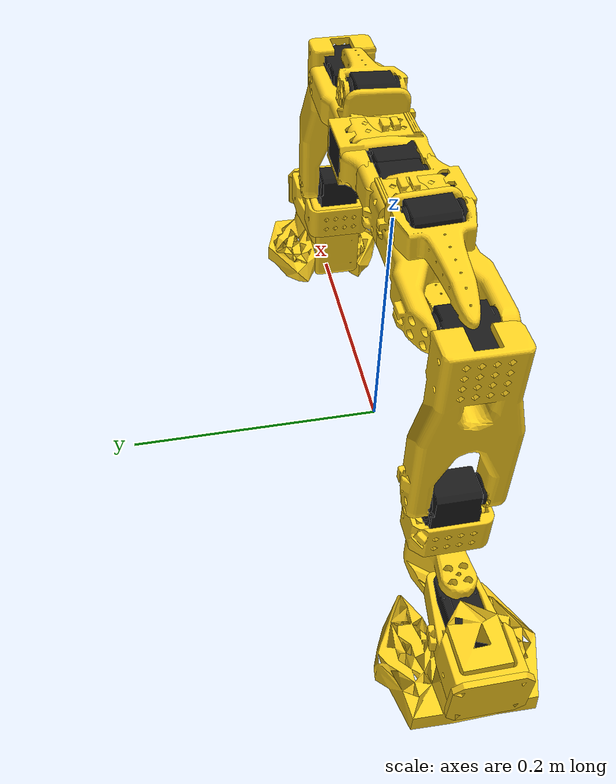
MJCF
<mujoco model="thali_arms_only">
  <compiler angle="radian" meshdir="so101/assets/"/>

  <default>
    <default class="arm_a_main">
      <default class="arm_a_so101_new_calib">
        <joint armature="0.005" damping="1" frictionloss="0.1"/>
        <general biastype="affine" gainprm="50" biasprm="0 -50"/>
        <default class="arm_a_visual">
          <geom type="mesh" contype="0" conaffinity="0" group="2"/>
        </default>
        <default class="arm_a_collision">
          <geom group="3"/>
        </default>
      </default>
      <default class="arm_a_sts3215">
        <joint armature="0.028" damping="0.6" frictionloss="0.052"/>
        <geom contype="0" conaffinity="0"/>
        <general forcerange="-2.94 2.94" biastype="affine" gainprm="998.22" biasprm="0 -998.22 -2.731"/>
      </default>
      <default class="arm_a_backlash">
        <joint range="-0.00872665 0.00872665" armature="0.01" damping="0.01" limited="true"/>
      </default>
    </default>
    <default class="arm_b_main">
      <default class="arm_b_so101_new_calib">
        <joint armature="0.005" damping="1" frictionloss="0.1"/>
        <general biastype="affine" gainprm="50" biasprm="0 -50"/>
        <default class="arm_b_visual">
          <geom type="mesh" contype="0" conaffinity="0" group="2"/>
        </default>
        <default class="arm_b_collision">
          <geom group="3"/>
        </default>
      </default>
      <default class="arm_b_sts3215">
        <joint armature="0.028" damping="0.6" frictionloss="0.052"/>
        <geom contype="0" conaffinity="0"/>
        <general forcerange="-2.94 2.94" biastype="affine" gainprm="998.22" biasprm="0 -998.22 -2.731"/>
      </default>
      <default class="arm_b_backlash">
        <joint range="-0.00872665 0.00872665" armature="0.01" damping="0.01" limited="true"/>
      </default>
    </default>
  </default>

  <asset>
    <material name="arm_a_base_motor_holder_so101_v1_material" rgba="1 0.82 0.12 1"/>
    <material name="arm_a_base_so101_v2_material" rgba="1 0.82 0.12 1"/>
    <material name="arm_a_sts3215_03a_v1_material" rgba="0.1 0.1 0.1 1"/>
    <material name="arm_a_waveshare_mounting_plate_so101_v2_material" rgba="1 0.82 0.12 1"/>
    <material name="arm_a_motor_holder_so101_base_v1_material" rgba="1 0.82 0.12 1"/>
    <material name="arm_a_rotation_pitch_so101_v1_material" rgba="1 0.82 0.12 1"/>
    <material name="arm_a_upper_arm_so101_v1_material" rgba="1 0.82 0.12 1"/>
    <material name="arm_a_under_arm_so101_v1_material" rgba="1 0.82 0.12 1"/>
    <material name="arm_a_motor_holder_so101_wrist_v1_material" rgba="1 0.82 0.12 1"/>
    <material name="arm_a_sts3215_03a_no_horn_v1_material" rgba="0.1 0.1 0.1 1"/>
    <material name="arm_a_wrist_roll_pitch_so101_v2_material" rgba="1 0.82 0.12 1"/>
    <material name="arm_a_wrist_roll_follower_so101_v1_material" rgba="1 0.82 0.12 1"/>
    <material name="arm_a_moving_jaw_so101_v1_material" rgba="1 0.82 0.12 1"/>
    <material name="arm_b_base_motor_holder_so101_v1_material" rgba="1 0.82 0.12 1"/>
    <material name="arm_b_base_so101_v2_material" rgba="1 0.82 0.12 1"/>
    <material name="arm_b_sts3215_03a_v1_material" rgba="0.1 0.1 0.1 1"/>
    <material name="arm_b_waveshare_mounting_plate_so101_v2_material" rgba="1 0.82 0.12 1"/>
    <material name="arm_b_motor_holder_so101_base_v1_material" rgba="1 0.82 0.12 1"/>
    <material name="arm_b_rotation_pitch_so101_v1_material" rgba="1 0.82 0.12 1"/>
    <material name="arm_b_upper_arm_so101_v1_material" rgba="1 0.82 0.12 1"/>
    <material name="arm_b_under_arm_so101_v1_material" rgba="1 0.82 0.12 1"/>
    <material name="arm_b_motor_holder_so101_wrist_v1_material" rgba="1 0.82 0.12 1"/>
    <material name="arm_b_sts3215_03a_no_horn_v1_material" rgba="0.1 0.1 0.1 1"/>
    <material name="arm_b_wrist_roll_pitch_so101_v2_material" rgba="1 0.82 0.12 1"/>
    <material name="arm_b_wrist_roll_follower_so101_v1_material" rgba="1 0.82 0.12 1"/>
    <material name="arm_b_moving_jaw_so101_v1_material" rgba="1 0.82 0.12 1"/>
    <mesh name="arm_a_waveshare_mounting_plate_so101_v2" file="waveshare_mounting_plate_so101_v2.stl"/>
    <mesh name="arm_a_sts3215_03a_v1" file="sts3215_03a_v1.stl"/>
    <mesh name="arm_a_motor_holder_so101_base_v1" file="motor_holder_so101_base_v1.stl"/>
    <mesh name="arm_a_wrist_roll_follower_so101_v1" file="wrist_roll_follower_so101_v1.stl"/>
    <mesh name="arm_a_moving_jaw_so101_v1" file="moving_jaw_so101_v1.stl"/>
    <mesh name="arm_a_base_motor_holder_so101_v1" file="base_motor_holder_so101_v1.stl"/>
    <mesh name="arm_a_upper_arm_so101_v1" file="upper_arm_so101_v1.stl"/>
    <mesh name="arm_a_wrist_roll_pitch_so101_v2" file="wrist_roll_pitch_so101_v2.stl"/>
    <mesh name="arm_a_under_arm_so101_v1" file="under_arm_so101_v1.stl"/>
    <mesh name="arm_a_rotation_pitch_so101_v1" file="rotation_pitch_so101_v1.stl"/>
    <mesh name="arm_a_motor_holder_so101_wrist_v1" file="motor_holder_so101_wrist_v1.stl"/>
    <mesh name="arm_a_sts3215_03a_no_horn_v1" file="sts3215_03a_no_horn_v1.stl"/>
    <mesh name="arm_a_base_so101_v2" file="base_so101_v2.stl"/>
    <mesh name="arm_b_waveshare_mounting_plate_so101_v2" file="waveshare_mounting_plate_so101_v2.stl"/>
    <mesh name="arm_b_sts3215_03a_v1" file="sts3215_03a_v1.stl"/>
    <mesh name="arm_b_motor_holder_so101_base_v1" file="motor_holder_so101_base_v1.stl"/>
    <mesh name="arm_b_wrist_roll_follower_so101_v1" file="wrist_roll_follower_so101_v1.stl"/>
    <mesh name="arm_b_moving_jaw_so101_v1" file="moving_jaw_so101_v1.stl"/>
    <mesh name="arm_b_base_motor_holder_so101_v1" file="base_motor_holder_so101_v1.stl"/>
    <mesh name="arm_b_upper_arm_so101_v1" file="upper_arm_so101_v1.stl"/>
    <mesh name="arm_b_wrist_roll_pitch_so101_v2" file="wrist_roll_pitch_so101_v2.stl"/>
    <mesh name="arm_b_under_arm_so101_v1" file="under_arm_so101_v1.stl"/>
    <mesh name="arm_b_rotation_pitch_so101_v1" file="rotation_pitch_so101_v1.stl"/>
    <mesh name="arm_b_motor_holder_so101_wrist_v1" file="motor_holder_so101_wrist_v1.stl"/>
    <mesh name="arm_b_sts3215_03a_no_horn_v1" file="sts3215_03a_no_horn_v1.stl"/>
    <mesh name="arm_b_base_so101_v2" file="base_so101_v2.stl"/>
  </asset>

  <worldbody>
    <body name="arm_a_base" childclass="arm_a_so101_new_calib" pos="-0.24 0 0">
      <inertial pos="0.0137179 -5.19711e-05 0.0334843" quat="0.420519 0.558762 0.57198 0.428704" mass="0.147" diaginertia="0.000136127 0.000131807 0.000113233"/>
      <geom class="arm_a_visual" pos="-0.00636471 -9.94414e-05 -0.0024" quat="0.5 0.5 0.5 0.5" material="arm_a_base_motor_holder_so101_v1_material" mesh="arm_a_base_motor_holder_so101_v1"/>
      <geom class="arm_a_visual" pos="-0.00636471 -8.97657e-09 -0.0024" quat="0.5 0.5 0.5 0.5" material="arm_a_base_so101_v2_material" mesh="arm_a_base_so101_v2"/>
      <geom class="arm_a_visual" pos="0.0263353 -8.97657e-09 0.0437" quat="1 0 0 0" material="arm_a_sts3215_03a_v1_material" mesh="arm_a_sts3215_03a_v1"/>
      <geom class="arm_a_visual" pos="-0.0309827 -0.000199441 0.0474" quat="0.5 0.5 0.5 0.5" material="arm_a_waveshare_mounting_plate_so101_v2_material" mesh="arm_a_waveshare_mounting_plate_so101_v2"/>
      <site name="arm_a_baseframe" quat="1 0 0 0" group="3"/>
      <body name="arm_a_shoulder" pos="0.0388353 -8.97657e-09 0.0624" quat="0 0 -1 0">
        <inertial pos="-0.0307604 -1.66727e-05 -0.0252713" quat="0.999865 0.00149563 0.0097084 0.0132043" mass="0.100006" diaginertia="8.37836e-05 8.10388e-05 2.39552e-05"/>
        <joint name="arm_a_shoulder_pan" class="arm_a_sts3215" range="-1.91986 1.91986"/>
        <geom class="arm_a_visual" pos="-0.0303992 0.000422241 -0.0417" quat="0.5 0.5 0.5 -0.5" material="arm_a_sts3215_03a_v1_material" mesh="arm_a_sts3215_03a_v1"/>
        <geom class="arm_a_collision" pos="-0.0303992 0.000422241 -0.0417" quat="0.5 0.5 0.5 -0.5" type="mesh" material="arm_a_sts3215_03a_v1_material" mesh="arm_a_sts3215_03a_v1"/>
        <geom class="arm_a_visual" pos="-0.0675992 -0.000177759 0.0158499" quat="0.5 0.5 -0.5 0.5" material="arm_a_motor_holder_so101_base_v1_material" mesh="arm_a_motor_holder_so101_base_v1"/>
        <geom class="arm_a_collision" pos="-0.0675992 -0.000177759 0.0158499" quat="0.5 0.5 -0.5 0.5" type="mesh" material="arm_a_motor_holder_so101_base_v1_material" mesh="arm_a_motor_holder_so101_base_v1"/>
        <geom class="arm_a_visual" pos="0.0122008 2.22413e-05 0.0464" quat="0.707107 -0.707107 0 0" material="arm_a_rotation_pitch_so101_v1_material" mesh="arm_a_rotation_pitch_so101_v1"/>
        <geom class="arm_a_collision" pos="0.0122008 2.22413e-05 0.0464" quat="0.707107 -0.707107 0 0" type="mesh" material="arm_a_rotation_pitch_so101_v1_material" mesh="arm_a_rotation_pitch_so101_v1"/>
        <body name="arm_a_upper_arm" pos="-0.0303992 -0.0182778 -0.0542" quat="0.5 -0.5 -0.5 -0.5">
          <inertial pos="-0.0898471 -0.00838224 0.0184089" quat="0.453195 0.454063 0.541891 0.542951" mass="0.103" diaginertia="0.000150873 0.000142487 3.72451e-05"/>
          <joint name="arm_a_shoulder_lift" class="arm_a_sts3215" range="-1.74533 1.74533"/>
          <geom class="arm_a_visual" pos="-0.11257 -0.0155 0.0187" quat="0 -0.707107 0.707107 0" material="arm_a_sts3215_03a_v1_material" mesh="arm_a_sts3215_03a_v1"/>
          <geom class="arm_a_collision" pos="-0.11257 -0.0155 0.0187" quat="0 -0.707107 0.707107 0" type="mesh" material="arm_a_sts3215_03a_v1_material" mesh="arm_a_sts3215_03a_v1"/>
          <geom class="arm_a_visual" pos="-0.065085 0.012 0.0182" quat="0 1 0 0" material="arm_a_upper_arm_so101_v1_material" mesh="arm_a_upper_arm_so101_v1"/>
          <geom class="arm_a_collision" pos="-0.065085 0.012 0.0182" quat="0 1 0 0" type="mesh" material="arm_a_upper_arm_so101_v1_material" mesh="arm_a_upper_arm_so101_v1"/>
          <body name="arm_a_lower_arm" pos="-0.11257 -0.028 0" quat="0.707107 0 0 0.707107">
            <inertial pos="-0.0980701 0.00324376 0.0182831" quat="0.510729 0.517006 0.487966 0.483477" mass="0.104" diaginertia="0.000160262 0.000145304 2.83125e-05"/>
            <joint name="arm_a_elbow_flex" class="arm_a_sts3215" range="-1.69 1.69"/>
            <geom class="arm_a_visual" pos="-0.0648499 -0.032 0.0182" quat="0 1 0 0" material="arm_a_under_arm_so101_v1_material" mesh="arm_a_under_arm_so101_v1"/>
            <geom class="arm_a_collision" pos="-0.0648499 -0.032 0.0182" quat="0 1 0 0" type="mesh" material="arm_a_under_arm_so101_v1_material" mesh="arm_a_under_arm_so101_v1"/>
            <geom class="arm_a_visual" pos="-0.0648499 -0.032 0.018" quat="0 -1 0 0" material="arm_a_motor_holder_so101_wrist_v1_material" mesh="arm_a_motor_holder_so101_wrist_v1"/>
            <geom class="arm_a_collision" pos="-0.0648499 -0.032 0.018" quat="0 -1 0 0" type="mesh" material="arm_a_motor_holder_so101_wrist_v1_material" mesh="arm_a_motor_holder_so101_wrist_v1"/>
            <geom class="arm_a_visual" pos="-0.1224 0.0052 0.0187" quat="0 0 1 0" material="arm_a_sts3215_03a_v1_material" mesh="arm_a_sts3215_03a_v1"/>
            <geom class="arm_a_collision" pos="-0.1224 0.0052 0.0187" quat="0 0 1 0" type="mesh" material="arm_a_sts3215_03a_v1_material" mesh="arm_a_sts3215_03a_v1"/>
            <body name="arm_a_wrist" pos="-0.1349 0.0052 0" quat="0.707107 0 0 -0.707107">
              <inertial pos="-0.000103312 -0.0386143 0.0281156" quat="0.967143 0.254226 0.00162226 -0.000146307" mass="0.079" diaginertia="3.68265e-05 2.74474e-05 1.89434e-05"/>
              <joint name="arm_a_wrist_flex" class="arm_a_sts3215" range="-1.65806 1.65806"/>
              <geom class="arm_a_visual" pos="0 -0.0424 0.0306" quat="0.5 0.5 0.5 -0.5" material="arm_a_sts3215_03a_no_horn_v1_material" mesh="arm_a_sts3215_03a_no_horn_v1"/>
              <geom class="arm_a_collision" pos="0 -0.0424 0.0306" quat="0.5 0.5 0.5 -0.5" type="mesh" material="arm_a_sts3215_03a_no_horn_v1_material" mesh="arm_a_sts3215_03a_no_horn_v1"/>
              <geom class="arm_a_visual" pos="0 -0.028 0.0181" quat="0.5 -0.5 -0.5 -0.5" material="arm_a_wrist_roll_pitch_so101_v2_material" mesh="arm_a_wrist_roll_pitch_so101_v2"/>
              <geom class="arm_a_collision" pos="0 -0.028 0.0181" quat="0.5 -0.5 -0.5 -0.5" type="mesh" material="arm_a_wrist_roll_pitch_so101_v2_material" mesh="arm_a_wrist_roll_pitch_so101_v2"/>
              <body name="arm_a_gripper" pos="0 -0.0611 0.0181" quat="0.0172091 -0.0172091 0.706897 0.706897">
                <inertial pos="0.000213627 0.000245138 -0.025187" quat="0.600717 0.355993 0.35863 0.61951" mass="0.087" diaginertia="4.33735e-05 3.77229e-05 2.42839e-05"/>
                <joint name="arm_a_wrist_roll" class="arm_a_sts3215" range="-2.74385 2.84121"/>
                <geom class="arm_a_visual" pos="0.0077 0.0001 -0.0234" quat="0.707107 -0.707107 0 0" material="arm_a_sts3215_03a_v1_material" mesh="arm_a_sts3215_03a_v1"/>
                <geom class="arm_a_collision" pos="0.0077 0.0001 -0.0234" quat="0.707107 -0.707107 0 0" type="mesh" material="arm_a_sts3215_03a_v1_material" mesh="arm_a_sts3215_03a_v1"/>
                <geom class="arm_a_visual" pos="0 -0.000218214 0.000949706" quat="0 1 0 0" material="arm_a_wrist_roll_follower_so101_v1_material" mesh="arm_a_wrist_roll_follower_so101_v1"/>
                <geom class="arm_a_collision" pos="0 -0.000218214 0.000949706" quat="0 1 0 0" type="mesh" material="arm_a_wrist_roll_follower_so101_v1_material" mesh="arm_a_wrist_roll_follower_so101_v1"/>
                <site name="arm_a_gripperframe" pos="-0.0079 -0.000218121 -0.0981274" quat="0.707107 0 0.707107 0" group="3"/>
                <body name="arm_a_moving_jaw_so101_v1" pos="0.0202 0.0188 -0.0234" quat="0.707107 0.707107 -1.85362e-08 1.85362e-08">
                  <inertial pos="-0.00157495 -0.0300244 0.0192755" quat="0.695265 0.717965 -0.0245618 -0.0230097" mass="0.012" diaginertia="6.63582e-06 5.29092e-06 1.86523e-06"/>
                  <joint name="arm_a_gripper" class="arm_a_sts3215" range="-0.174533 1.74533"/>
                  <geom class="arm_a_visual" pos="0 0 0.0189" quat="1 0 0 0" material="arm_a_moving_jaw_so101_v1_material" mesh="arm_a_moving_jaw_so101_v1"/>
                  <geom class="arm_a_collision" pos="0 0 0.0189" quat="1 0 0 0" type="mesh" material="arm_a_moving_jaw_so101_v1_material" mesh="arm_a_moving_jaw_so101_v1"/>
                </body>
              </body>
            </body>
          </body>
        </body>
      </body>
    </body>
    <body name="arm_b_base" childclass="arm_b_so101_new_calib" pos="0.24 0 0" quat="0 0 0 1">
      <inertial pos="0.0137179 -5.19711e-05 0.0334843" quat="0.420519 0.558762 0.57198 0.428704" mass="0.147" diaginertia="0.000136127 0.000131807 0.000113233"/>
      <geom class="arm_b_visual" pos="-0.00636471 -9.94414e-05 -0.0024" quat="0.5 0.5 0.5 0.5" material="arm_b_base_motor_holder_so101_v1_material" mesh="arm_b_base_motor_holder_so101_v1"/>
      <geom class="arm_b_visual" pos="-0.00636471 -8.97657e-09 -0.0024" quat="0.5 0.5 0.5 0.5" material="arm_b_base_so101_v2_material" mesh="arm_b_base_so101_v2"/>
      <geom class="arm_b_visual" pos="0.0263353 -8.97657e-09 0.0437" quat="1 0 0 0" material="arm_b_sts3215_03a_v1_material" mesh="arm_b_sts3215_03a_v1"/>
      <geom class="arm_b_visual" pos="-0.0309827 -0.000199441 0.0474" quat="0.5 0.5 0.5 0.5" material="arm_b_waveshare_mounting_plate_so101_v2_material" mesh="arm_b_waveshare_mounting_plate_so101_v2"/>
      <site name="arm_b_baseframe" quat="1 0 0 0" group="3"/>
      <body name="arm_b_shoulder" pos="0.0388353 -8.97657e-09 0.0624" quat="0 0 -1 0">
        <inertial pos="-0.0307604 -1.66727e-05 -0.0252713" quat="0.999865 0.00149563 0.0097084 0.0132043" mass="0.100006" diaginertia="8.37836e-05 8.10388e-05 2.39552e-05"/>
        <joint name="arm_b_shoulder_pan" class="arm_b_sts3215" range="-1.91986 1.91986"/>
        <geom class="arm_b_visual" pos="-0.0303992 0.000422241 -0.0417" quat="0.5 0.5 0.5 -0.5" material="arm_b_sts3215_03a_v1_material" mesh="arm_b_sts3215_03a_v1"/>
        <geom class="arm_b_collision" pos="-0.0303992 0.000422241 -0.0417" quat="0.5 0.5 0.5 -0.5" type="mesh" material="arm_b_sts3215_03a_v1_material" mesh="arm_b_sts3215_03a_v1"/>
        <geom class="arm_b_visual" pos="-0.0675992 -0.000177759 0.0158499" quat="0.5 0.5 -0.5 0.5" material="arm_b_motor_holder_so101_base_v1_material" mesh="arm_b_motor_holder_so101_base_v1"/>
        <geom class="arm_b_collision" pos="-0.0675992 -0.000177759 0.0158499" quat="0.5 0.5 -0.5 0.5" type="mesh" material="arm_b_motor_holder_so101_base_v1_material" mesh="arm_b_motor_holder_so101_base_v1"/>
        <geom class="arm_b_visual" pos="0.0122008 2.22413e-05 0.0464" quat="0.707107 -0.707107 0 0" material="arm_b_rotation_pitch_so101_v1_material" mesh="arm_b_rotation_pitch_so101_v1"/>
        <geom class="arm_b_collision" pos="0.0122008 2.22413e-05 0.0464" quat="0.707107 -0.707107 0 0" type="mesh" material="arm_b_rotation_pitch_so101_v1_material" mesh="arm_b_rotation_pitch_so101_v1"/>
        <body name="arm_b_upper_arm" pos="-0.0303992 -0.0182778 -0.0542" quat="0.5 -0.5 -0.5 -0.5">
          <inertial pos="-0.0898471 -0.00838224 0.0184089" quat="0.453195 0.454063 0.541891 0.542951" mass="0.103" diaginertia="0.000150873 0.000142487 3.72451e-05"/>
          <joint name="arm_b_shoulder_lift" class="arm_b_sts3215" range="-1.74533 1.74533"/>
          <geom class="arm_b_visual" pos="-0.11257 -0.0155 0.0187" quat="0 -0.707107 0.707107 0" material="arm_b_sts3215_03a_v1_material" mesh="arm_b_sts3215_03a_v1"/>
          <geom class="arm_b_collision" pos="-0.11257 -0.0155 0.0187" quat="0 -0.707107 0.707107 0" type="mesh" material="arm_b_sts3215_03a_v1_material" mesh="arm_b_sts3215_03a_v1"/>
          <geom class="arm_b_visual" pos="-0.065085 0.012 0.0182" quat="0 1 0 0" material="arm_b_upper_arm_so101_v1_material" mesh="arm_b_upper_arm_so101_v1"/>
          <geom class="arm_b_collision" pos="-0.065085 0.012 0.0182" quat="0 1 0 0" type="mesh" material="arm_b_upper_arm_so101_v1_material" mesh="arm_b_upper_arm_so101_v1"/>
          <body name="arm_b_lower_arm" pos="-0.11257 -0.028 0" quat="0.707107 0 0 0.707107">
            <inertial pos="-0.0980701 0.00324376 0.0182831" quat="0.510729 0.517006 0.487966 0.483477" mass="0.104" diaginertia="0.000160262 0.000145304 2.83125e-05"/>
            <joint name="arm_b_elbow_flex" class="arm_b_sts3215" range="-1.69 1.69"/>
            <geom class="arm_b_visual" pos="-0.0648499 -0.032 0.0182" quat="0 1 0 0" material="arm_b_under_arm_so101_v1_material" mesh="arm_b_under_arm_so101_v1"/>
            <geom class="arm_b_collision" pos="-0.0648499 -0.032 0.0182" quat="0 1 0 0" type="mesh" material="arm_b_under_arm_so101_v1_material" mesh="arm_b_under_arm_so101_v1"/>
            <geom class="arm_b_visual" pos="-0.0648499 -0.032 0.018" quat="0 -1 0 0" material="arm_b_motor_holder_so101_wrist_v1_material" mesh="arm_b_motor_holder_so101_wrist_v1"/>
            <geom class="arm_b_collision" pos="-0.0648499 -0.032 0.018" quat="0 -1 0 0" type="mesh" material="arm_b_motor_holder_so101_wrist_v1_material" mesh="arm_b_motor_holder_so101_wrist_v1"/>
            <geom class="arm_b_visual" pos="-0.1224 0.0052 0.0187" quat="0 0 1 0" material="arm_b_sts3215_03a_v1_material" mesh="arm_b_sts3215_03a_v1"/>
            <geom class="arm_b_collision" pos="-0.1224 0.0052 0.0187" quat="0 0 1 0" type="mesh" material="arm_b_sts3215_03a_v1_material" mesh="arm_b_sts3215_03a_v1"/>
            <body name="arm_b_wrist" pos="-0.1349 0.0052 0" quat="0.707107 0 0 -0.707107">
              <inertial pos="-0.000103312 -0.0386143 0.0281156" quat="0.967143 0.254226 0.00162226 -0.000146307" mass="0.079" diaginertia="3.68265e-05 2.74474e-05 1.89434e-05"/>
              <joint name="arm_b_wrist_flex" class="arm_b_sts3215" range="-1.65806 1.65806"/>
              <geom class="arm_b_visual" pos="0 -0.0424 0.0306" quat="0.5 0.5 0.5 -0.5" material="arm_b_sts3215_03a_no_horn_v1_material" mesh="arm_b_sts3215_03a_no_horn_v1"/>
              <geom class="arm_b_collision" pos="0 -0.0424 0.0306" quat="0.5 0.5 0.5 -0.5" type="mesh" material="arm_b_sts3215_03a_no_horn_v1_material" mesh="arm_b_sts3215_03a_no_horn_v1"/>
              <geom class="arm_b_visual" pos="0 -0.028 0.0181" quat="0.5 -0.5 -0.5 -0.5" material="arm_b_wrist_roll_pitch_so101_v2_material" mesh="arm_b_wrist_roll_pitch_so101_v2"/>
              <geom class="arm_b_collision" pos="0 -0.028 0.0181" quat="0.5 -0.5 -0.5 -0.5" type="mesh" material="arm_b_wrist_roll_pitch_so101_v2_material" mesh="arm_b_wrist_roll_pitch_so101_v2"/>
              <body name="arm_b_gripper" pos="0 -0.0611 0.0181" quat="0.0172091 -0.0172091 0.706897 0.706897">
                <inertial pos="0.000213627 0.000245138 -0.025187" quat="0.600717 0.355993 0.35863 0.61951" mass="0.087" diaginertia="4.33735e-05 3.77229e-05 2.42839e-05"/>
                <joint name="arm_b_wrist_roll" class="arm_b_sts3215" range="-2.74385 2.84121"/>
                <geom class="arm_b_visual" pos="0.0077 0.0001 -0.0234" quat="0.707107 -0.707107 0 0" material="arm_b_sts3215_03a_v1_material" mesh="arm_b_sts3215_03a_v1"/>
                <geom class="arm_b_collision" pos="0.0077 0.0001 -0.0234" quat="0.707107 -0.707107 0 0" type="mesh" material="arm_b_sts3215_03a_v1_material" mesh="arm_b_sts3215_03a_v1"/>
                <geom class="arm_b_visual" pos="0 -0.000218214 0.000949706" quat="0 1 0 0" material="arm_b_wrist_roll_follower_so101_v1_material" mesh="arm_b_wrist_roll_follower_so101_v1"/>
                <geom class="arm_b_collision" pos="0 -0.000218214 0.000949706" quat="0 1 0 0" type="mesh" material="arm_b_wrist_roll_follower_so101_v1_material" mesh="arm_b_wrist_roll_follower_so101_v1"/>
                <site name="arm_b_gripperframe" pos="-0.0079 -0.000218121 -0.0981274" quat="0.707107 0 0.707107 0" group="3"/>
                <body name="arm_b_moving_jaw_so101_v1" pos="0.0202 0.0188 -0.0234" quat="0.707107 0.707107 -1.85362e-08 1.85362e-08">
                  <inertial pos="-0.00157495 -0.0300244 0.0192755" quat="0.695265 0.717965 -0.0245618 -0.0230097" mass="0.012" diaginertia="6.63582e-06 5.29092e-06 1.86523e-06"/>
                  <joint name="arm_b_gripper" class="arm_b_sts3215" range="-0.174533 1.74533"/>
                  <geom class="arm_b_visual" pos="0 0 0.0189" quat="1 0 0 0" material="arm_b_moving_jaw_so101_v1_material" mesh="arm_b_moving_jaw_so101_v1"/>
                  <geom class="arm_b_collision" pos="0 0 0.0189" quat="1 0 0 0" type="mesh" material="arm_b_moving_jaw_so101_v1_material" mesh="arm_b_moving_jaw_so101_v1"/>
                </body>
              </body>
            </body>
          </body>
        </body>
      </body>
    </body>
  </worldbody>

  <actuator>
    <general name="arm_a_shoulder_pan" class="arm_a_sts3215" joint="arm_a_shoulder_pan" ctrlrange="-1.91986 1.91986" forcerange="-3.35 3.35"/>
    <general name="arm_a_shoulder_lift" class="arm_a_sts3215" joint="arm_a_shoulder_lift" ctrlrange="-1.74533 1.74533" forcerange="-3.35 3.35"/>
    <general name="arm_a_elbow_flex" class="arm_a_sts3215" joint="arm_a_elbow_flex" ctrlrange="-1.69 1.69" forcerange="-3.35 3.35"/>
    <general name="arm_a_wrist_flex" class="arm_a_sts3215" joint="arm_a_wrist_flex" ctrlrange="-1.65806 1.65806" forcerange="-3.35 3.35"/>
    <general name="arm_a_wrist_roll" class="arm_a_sts3215" joint="arm_a_wrist_roll" ctrlrange="-2.74385 2.84121" forcerange="-3.35 3.35"/>
    <general name="arm_a_gripper" class="arm_a_sts3215" joint="arm_a_gripper" ctrlrange="-0.17453 1.74533" forcerange="-3.35 3.35"/>
    <general name="arm_b_shoulder_pan" class="arm_b_sts3215" joint="arm_b_shoulder_pan" ctrlrange="-1.91986 1.91986" forcerange="-3.35 3.35"/>
    <general name="arm_b_shoulder_lift" class="arm_b_sts3215" joint="arm_b_shoulder_lift" ctrlrange="-1.74533 1.74533" forcerange="-3.35 3.35"/>
    <general name="arm_b_elbow_flex" class="arm_b_sts3215" joint="arm_b_elbow_flex" ctrlrange="-1.69 1.69" forcerange="-3.35 3.35"/>
    <general name="arm_b_wrist_flex" class="arm_b_sts3215" joint="arm_b_wrist_flex" ctrlrange="-1.65806 1.65806" forcerange="-3.35 3.35"/>
    <general name="arm_b_wrist_roll" class="arm_b_sts3215" joint="arm_b_wrist_roll" ctrlrange="-2.74385 2.84121" forcerange="-3.35 3.35"/>
    <general name="arm_b_gripper" class="arm_b_sts3215" joint="arm_b_gripper" ctrlrange="-0.17453 1.74533" forcerange="-3.35 3.35"/>
  </actuator>
</mujoco>
